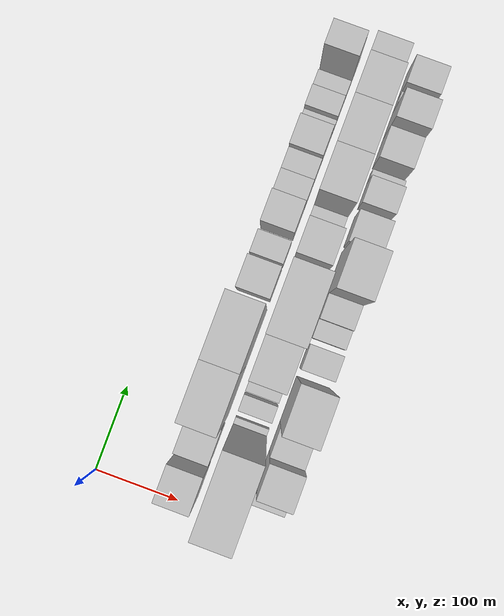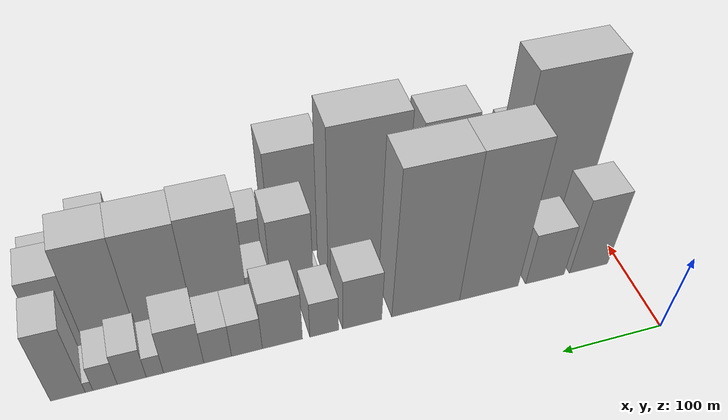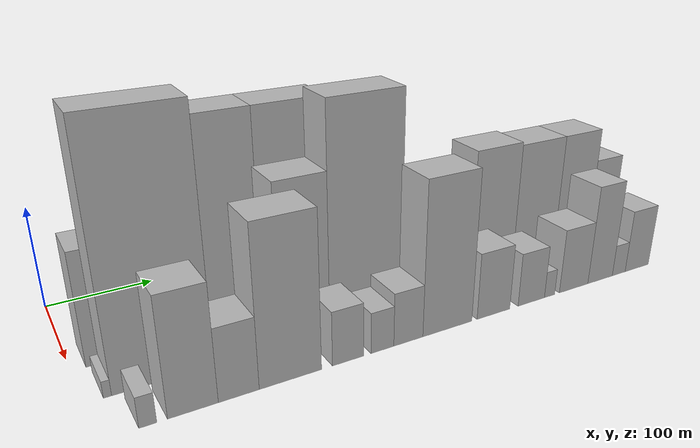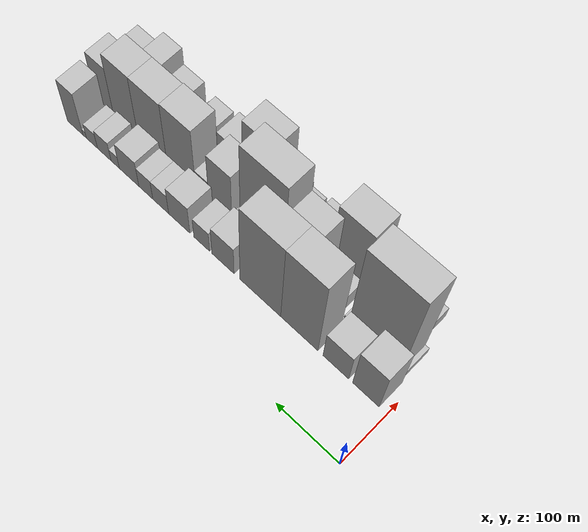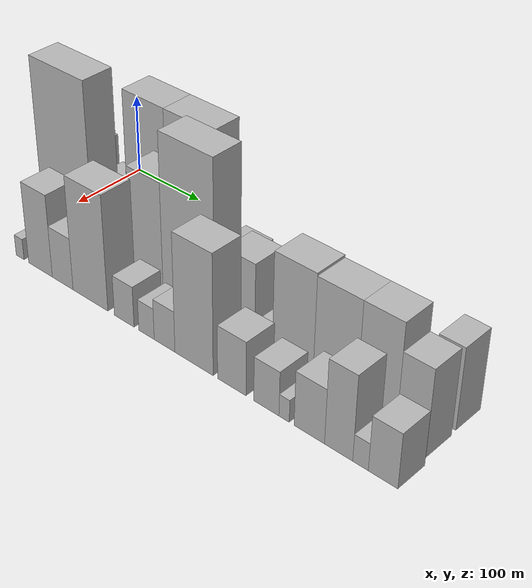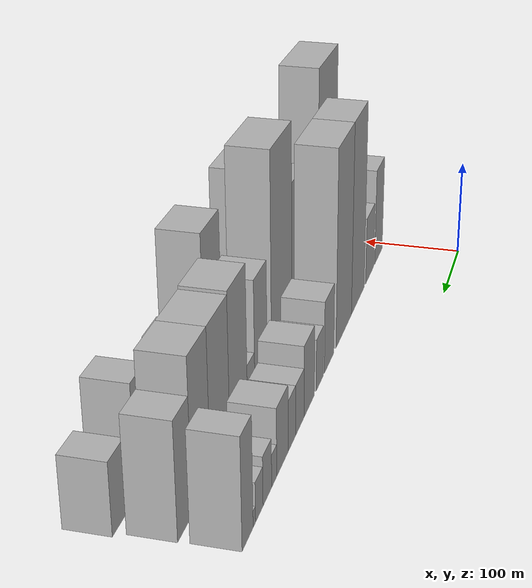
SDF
<sdf version="1.6">
 <world name="default">
  <model name="building_15">
   <static>1</static>
   <pose>100.0000 32.9427 0 0.000000 0.000000 0.000000</pose>
   <link name="link">
    <pose>0 0 52.50 0 0 0</pose>
    <collision name="collision"><geometry><box><size>40.0000 41.3135 105.0000</size></box></geometry></collision>
    <visual name="visual">
     <cast_shadows>0</cast_shadows>
     <geometry><box><size>40.0000 41.3135 105.0000</size></box></geometry>
     <material>
      <script>
       <uri>model://HANNAS_wall/materials/scripts</uri>
       <uri>model://HANNAS_wall/materials/textures</uri>
       <name>vrc/HANNAS_wall</name>
      </script>
     </material>
    </visual>
   </link>
  </model>
  <model name="building_16">
   <static>1</static>
   <pose>100.0000 80.0405 0 0.000000 0.000000 0.000000</pose>
   <link name="link">
    <pose>0 0 36.00 0 0 0</pose>
    <collision name="collision"><geometry><box><size>40.0000 40.8822 72.0000</size></box></geometry></collision>
    <visual name="visual">
     <cast_shadows>0</cast_shadows>
     <geometry><box><size>40.0000 40.8822 72.0000</size></box></geometry>
     <material>
      <script>
       <uri>model://HANNAS_wall/materials/scripts</uri>
       <uri>model://HANNAS_wall/materials/textures</uri>
       <name>vrc/HANNAS_wall</name>
      </script>
     </material>
    </visual>
   </link>
  </model>
  <model name="building_17">
   <static>1</static>
   <pose>100.0000 138.8409 0 0.000000 0.000000 0.000000</pose>
   <link name="link">
    <pose>0 0 99.00 0 0 0</pose>
    <collision name="collision"><geometry><box><size>40.0000 60.7184 198.0000</size></box></geometry></collision>
    <visual name="visual">
     <cast_shadows>0</cast_shadows>
     <geometry><box><size>40.0000 60.7184 198.0000</size></box></geometry>
     <material>
      <script>
       <uri>model://HANNAS_wall/materials/scripts</uri>
       <uri>model://HANNAS_wall/materials/textures</uri>
       <name>vrc/HANNAS_wall</name>
      </script>
     </material>
    </visual>
   </link>
  </model>
  <model name="building_18">
   <static>1</static>
   <pose>100.0000 203.3667 0 0.000000 0.000000 0.000000</pose>
   <link name="link">
    <pose>0 0 99.00 0 0 0</pose>
    <collision name="collision"><geometry><box><size>40.0000 68.3333 198.0000</size></box></geometry></collision>
    <visual name="visual">
     <cast_shadows>0</cast_shadows>
     <geometry><box><size>40.0000 68.3333 198.0000</size></box></geometry>
     <material>
      <script>
       <uri>model://HANNAS_wall/materials/scripts</uri>
       <uri>model://HANNAS_wall/materials/textures</uri>
       <name>vrc/HANNAS_wall</name>
      </script>
     </material>
    </visual>
   </link>
  </model>
  <model name="building_19">
   <static>1</static>
   <pose>100.0000 266.5942 0 0.000000 0.000000 0.000000</pose>
   <link name="link">
    <pose>0 0 36.00 0 0 0</pose>
    <collision name="collision"><geometry><box><size>40.0000 38.1216 72.0000</size></box></geometry></collision>
    <visual name="visual">
     <cast_shadows>0</cast_shadows>
     <geometry><box><size>40.0000 38.1216 72.0000</size></box></geometry>
     <material>
      <script>
       <uri>model://HANNAS_wall/materials/scripts</uri>
       <uri>model://HANNAS_wall/materials/textures</uri>
       <name>vrc/HANNAS_wall</name>
      </script>
     </material>
    </visual>
   </link>
  </model>
  <model name="building_20">
   <static>1</static>
   <pose>100.0000 303.4126 0 0.000000 0.000000 0.000000</pose>
   <link name="link">
    <pose>0 0 25.50 0 0 0</pose>
    <collision name="collision"><geometry><box><size>40.0000 27.5153 51.0000</size></box></geometry></collision>
    <visual name="visual">
     <cast_shadows>0</cast_shadows>
     <geometry><box><size>40.0000 27.5153 51.0000</size></box></geometry>
     <material>
      <script>
       <uri>model://HANNAS_wall/materials/scripts</uri>
       <uri>model://HANNAS_wall/materials/textures</uri>
       <name>vrc/HANNAS_wall</name>
      </script>
     </material>
    </visual>
   </link>
  </model>
  <model name="building_21">
   <static>1</static>
   <pose>100.0000 343.0407 0 0.000000 0.000000 0.000000</pose>
   <link name="link">
    <pose>0 0 34.50 0 0 0</pose>
    <collision name="collision"><geometry><box><size>40.0000 37.7409 69.0000</size></box></geometry></collision>
    <visual name="visual">
     <cast_shadows>0</cast_shadows>
     <geometry><box><size>40.0000 37.7409 69.0000</size></box></geometry>
     <material>
      <script>
       <uri>model://HANNAS_wall/materials/scripts</uri>
       <uri>model://HANNAS_wall/materials/textures</uri>
       <name>vrc/HANNAS_wall</name>
      </script>
     </material>
    </visual>
   </link>
  </model>
  <model name="building_22">
   <static>1</static>
   <pose>100.0000 376.2095 0 0.000000 0.000000 0.000000</pose>
   <link name="link">
    <pose>0 0 24.00 0 0 0</pose>
    <collision name="collision"><geometry><box><size>40.0000 28.5967 48.0000</size></box></geometry></collision>
    <visual name="visual">
     <cast_shadows>0</cast_shadows>
     <geometry><box><size>40.0000 28.5967 48.0000</size></box></geometry>
     <material>
      <script>
       <uri>model://HANNAS_wall/materials/scripts</uri>
       <uri>model://HANNAS_wall/materials/textures</uri>
       <name>vrc/HANNAS_wall</name>
      </script>
     </material>
    </visual>
   </link>
  </model>
  <model name="building_23">
   <static>1</static>
   <pose>100.0000 403.1904 0 0.000000 0.000000 0.000000</pose>
   <link name="link">
    <pose>0 0 24.00 0 0 0</pose>
    <collision name="collision"><geometry><box><size>40.0000 25.3651 48.0000</size></box></geometry></collision>
    <visual name="visual">
     <cast_shadows>0</cast_shadows>
     <geometry><box><size>40.0000 25.3651 48.0000</size></box></geometry>
     <material>
      <script>
       <uri>model://HANNAS_wall/materials/scripts</uri>
       <uri>model://HANNAS_wall/materials/textures</uri>
       <name>vrc/HANNAS_wall</name>
      </script>
     </material>
    </visual>
   </link>
  </model>
  <model name="building_24">
   <static>1</static>
   <pose>100.0000 433.9990 0 0.000000 0.000000 0.000000</pose>
   <link name="link">
    <pose>0 0 31.50 0 0 0</pose>
    <collision name="collision"><geometry><box><size>40.0000 36.2522 63.0000</size></box></geometry></collision>
    <visual name="visual">
     <cast_shadows>0</cast_shadows>
     <geometry><box><size>40.0000 36.2522 63.0000</size></box></geometry>
     <material>
      <script>
       <uri>model://HANNAS_wall/materials/scripts</uri>
       <uri>model://HANNAS_wall/materials/textures</uri>
       <name>vrc/HANNAS_wall</name>
      </script>
     </material>
    </visual>
   </link>
  </model>
  <model name="building_25">
   <static>1</static>
   <pose>100.0000 459.8254 0 0.000000 0.000000 0.000000</pose>
   <link name="link">
    <pose>0 0 15.00 0 0 0</pose>
    <collision name="collision"><geometry><box><size>40.0000 15.4006 30.0000</size></box></geometry></collision>
    <visual name="visual">
     <cast_shadows>0</cast_shadows>
     <geometry><box><size>40.0000 15.4006 30.0000</size></box></geometry>
     <material>
      <script>
       <uri>model://HANNAS_wall/materials/scripts</uri>
       <uri>model://HANNAS_wall/materials/textures</uri>
       <name>vrc/HANNAS_wall</name>
      </script>
     </material>
    </visual>
   </link>
  </model>
  <model name="building_26">
   <static>1</static>
   <pose>100.0000 480.3086 0 0.000000 0.000000 0.000000</pose>
   <link name="link">
    <pose>0 0 22.50 0 0 0</pose>
    <collision name="collision"><geometry><box><size>40.0000 25.5657 45.0000</size></box></geometry></collision>
    <visual name="visual">
     <cast_shadows>0</cast_shadows>
     <geometry><box><size>40.0000 25.5657 45.0000</size></box></geometry>
     <material>
      <script>
       <uri>model://HANNAS_wall/materials/scripts</uri>
       <uri>model://HANNAS_wall/materials/textures</uri>
       <name>vrc/HANNAS_wall</name>
      </script>
     </material>
    </visual>
   </link>
  </model>
  <model name="building_27">
   <static>1</static>
   <pose>100.0000 503.7070 0 0.000000 0.000000 0.000000</pose>
   <link name="link">
    <pose>0 0 18.00 0 0 0</pose>
    <collision name="collision"><geometry><box><size>40.0000 21.2311 36.0000</size></box></geometry></collision>
    <visual name="visual">
     <cast_shadows>0</cast_shadows>
     <geometry><box><size>40.0000 21.2311 36.0000</size></box></geometry>
     <material>
      <script>
       <uri>model://HANNAS_wall/materials/scripts</uri>
       <uri>model://HANNAS_wall/materials/textures</uri>
       <name>vrc/HANNAS_wall</name>
      </script>
     </material>
    </visual>
   </link>
  </model>
  <model name="building_28">
   <static>1</static>
   <pose>100.0000 517.6253 0 0.000000 0.000000 0.000000</pose>
   <link name="link">
    <pose>0 0 7.50 0 0 0</pose>
    <collision name="collision"><geometry><box><size>40.0000 6.6057 15.0000</size></box></geometry></collision>
    <visual name="visual">
     <cast_shadows>0</cast_shadows>
     <geometry><box><size>40.0000 6.6057 15.0000</size></box></geometry>
     <material>
      <script>
       <uri>model://HANNAS_wall/materials/scripts</uri>
       <uri>model://HANNAS_wall/materials/textures</uri>
       <name>vrc/HANNAS_wall</name>
      </script>
     </material>
    </visual>
   </link>
  </model>
  <model name="building_29">
   <static>1</static>
   <pose>100.0000 535.8227 0 0.000000 0.000000 0.000000</pose>
   <link name="link">
    <pose>0 0 49.50 0 0 0</pose>
    <collision name="collision"><geometry><box><size>40.0000 29.7891 99.0000</size></box></geometry></collision>
    <visual name="visual">
     <cast_shadows>0</cast_shadows>
     <geometry><box><size>40.0000 29.7891 99.0000</size></box></geometry>
     <material>
      <script>
       <uri>model://HANNAS_wall/materials/scripts</uri>
       <uri>model://HANNAS_wall/materials/textures</uri>
       <name>vrc/HANNAS_wall</name>
      </script>
     </material>
    </visual>
   </link>
  </model>
  <model name="building_47">
   <static>1</static>
   <pose>149.0000 18.4719 0 0.000000 0.000000 0.000000</pose>
   <link name="link">
    <pose>0 0 7.50 0 0 0</pose>
    <collision name="collision"><geometry><box><size>40.0000 6.2835 15.0000</size></box></geometry></collision>
    <visual name="visual">
     <cast_shadows>0</cast_shadows>
     <geometry><box><size>40.0000 6.2835 15.0000</size></box></geometry>
     <material>
      <script>
       <uri>model://HANNAS_wall/materials/scripts</uri>
       <uri>model://HANNAS_wall/materials/textures</uri>
       <name>vrc/HANNAS_wall</name>
      </script>
     </material>
    </visual>
   </link>
  </model>
  <model name="building_48">
   <static>1</static>
   <pose>149.0000 63.1978 0 0.000000 0.000000 0.000000</pose>
   <link name="link">
    <pose>0 0 112.50 0 0 0</pose>
    <collision name="collision"><geometry><box><size>40.0000 83.1682 225.0000</size></box></geometry></collision>
    <visual name="visual">
     <cast_shadows>0</cast_shadows>
     <geometry><box><size>40.0000 83.1682 225.0000</size></box></geometry>
     <material>
      <script>
       <uri>model://HANNAS_wall/materials/scripts</uri>
       <uri>model://HANNAS_wall/materials/textures</uri>
       <name>vrc/HANNAS_wall</name>
      </script>
     </material>
    </visual>
   </link>
  </model>
  <model name="building_49">
   <static>1</static>
   <pose>149.0000 108.7151 0 0.000000 0.000000 0.000000</pose>
   <link name="link">
    <pose>0 0 9.00 0 0 0</pose>
    <collision name="collision"><geometry><box><size>40.0000 7.8665 18.0000</size></box></geometry></collision>
    <visual name="visual">
     <cast_shadows>0</cast_shadows>
     <geometry><box><size>40.0000 7.8665 18.0000</size></box></geometry>
     <material>
      <script>
       <uri>model://HANNAS_wall/materials/scripts</uri>
       <uri>model://HANNAS_wall/materials/textures</uri>
       <name>vrc/HANNAS_wall</name>
      </script>
     </material>
    </visual>
   </link>
  </model>
  <model name="building_50">
   <static>1</static>
   <pose>149.0000 131.3563 0 0.000000 0.000000 0.000000</pose>
   <link name="link">
    <pose>0 0 18.00 0 0 0</pose>
    <collision name="collision"><geometry><box><size>40.0000 19.4159 36.0000</size></box></geometry></collision>
    <visual name="visual">
     <cast_shadows>0</cast_shadows>
     <geometry><box><size>40.0000 19.4159 36.0000</size></box></geometry>
     <material>
      <script>
       <uri>model://HANNAS_wall/materials/scripts</uri>
       <uri>model://HANNAS_wall/materials/textures</uri>
       <name>vrc/HANNAS_wall</name>
      </script>
     </material>
    </visual>
   </link>
  </model>
  <model name="building_51">
   <static>1</static>
   <pose>149.0000 150.3839 0 0.000000 0.000000 0.000000</pose>
   <link name="link">
    <pose>0 0 13.50 0 0 0</pose>
    <collision name="collision"><geometry><box><size>40.0000 12.6393 27.0000</size></box></geometry></collision>
    <visual name="visual">
     <cast_shadows>0</cast_shadows>
     <geometry><box><size>40.0000 12.6393 27.0000</size></box></geometry>
     <material>
      <script>
       <uri>model://HANNAS_wall/materials/scripts</uri>
       <uri>model://HANNAS_wall/materials/textures</uri>
       <name>vrc/HANNAS_wall</name>
      </script>
     </material>
    </visual>
   </link>
  </model>
  <model name="building_52">
   <static>1</static>
   <pose>149.0000 160.0758 0 0.000000 0.000000 0.000000</pose>
   <link name="link">
    <pose>0 0 7.50 0 0 0</pose>
    <collision name="collision"><geometry><box><size>40.0000 6.7444 15.0000</size></box></geometry></collision>
    <visual name="visual">
     <cast_shadows>0</cast_shadows>
     <geometry><box><size>40.0000 6.7444 15.0000</size></box></geometry>
     <material>
      <script>
       <uri>model://HANNAS_wall/materials/scripts</uri>
       <uri>model://HANNAS_wall/materials/textures</uri>
       <name>vrc/HANNAS_wall</name>
      </script>
     </material>
    </visual>
   </link>
  </model>
  <model name="building_53">
   <static>1</static>
   <pose>149.0000 187.6283 0 0.000000 0.000000 0.000000</pose>
   <link name="link">
    <pose>0 0 75.00 0 0 0</pose>
    <collision name="collision"><geometry><box><size>40.0000 48.3606 150.0000</size></box></geometry></collision>
    <visual name="visual">
     <cast_shadows>0</cast_shadows>
     <geometry><box><size>40.0000 48.3606 150.0000</size></box></geometry>
     <material>
      <script>
       <uri>model://HANNAS_wall/materials/scripts</uri>
       <uri>model://HANNAS_wall/materials/textures</uri>
       <name>vrc/HANNAS_wall</name>
      </script>
     </material>
    </visual>
   </link>
  </model>
  <model name="building_54">
   <static>1</static>
   <pose>149.0000 248.7288 0 0.000000 0.000000 0.000000</pose>
   <link name="link">
    <pose>0 0 105.00 0 0 0</pose>
    <collision name="collision"><geometry><box><size>40.0000 73.8404 210.0000</size></box></geometry></collision>
    <visual name="visual">
     <cast_shadows>0</cast_shadows>
     <geometry><box><size>40.0000 73.8404 210.0000</size></box></geometry>
     <material>
      <script>
       <uri>model://HANNAS_wall/materials/scripts</uri>
       <uri>model://HANNAS_wall/materials/textures</uri>
       <name>vrc/HANNAS_wall</name>
      </script>
     </material>
    </visual>
   </link>
  </model>
  <model name="building_55">
   <static>1</static>
   <pose>149.0000 295.9951 0 0.000000 0.000000 0.000000</pose>
   <link name="link">
    <pose>0 0 9.00 0 0 0</pose>
    <collision name="collision"><geometry><box><size>40.0000 8.6923 18.0000</size></box></geometry></collision>
    <visual name="visual">
     <cast_shadows>0</cast_shadows>
     <geometry><box><size>40.0000 8.6923 18.0000</size></box></geometry>
     <material>
      <script>
       <uri>model://HANNAS_wall/materials/scripts</uri>
       <uri>model://HANNAS_wall/materials/textures</uri>
       <name>vrc/HANNAS_wall</name>
      </script>
     </material>
    </visual>
   </link>
  </model>
  <model name="building_56">
   <static>1</static>
   <pose>149.0000 320.6971 0 0.000000 0.000000 0.000000</pose>
   <link name="link">
    <pose>0 0 57.00 0 0 0</pose>
    <collision name="collision"><geometry><box><size>40.0000 40.7116 114.0000</size></box></geometry></collision>
    <visual name="visual">
     <cast_shadows>0</cast_shadows>
     <geometry><box><size>40.0000 40.7116 114.0000</size></box></geometry>
     <material>
      <script>
       <uri>model://HANNAS_wall/materials/scripts</uri>
       <uri>model://HANNAS_wall/materials/textures</uri>
       <name>vrc/HANNAS_wall</name>
      </script>
     </material>
    </visual>
   </link>
  </model>
  <model name="building_57">
   <static>1</static>
   <pose>149.0000 352.7675 0 0.000000 0.000000 0.000000</pose>
   <link name="link">
    <pose>0 0 22.50 0 0 0</pose>
    <collision name="collision"><geometry><box><size>40.0000 23.4290 45.0000</size></box></geometry></collision>
    <visual name="visual">
     <cast_shadows>0</cast_shadows>
     <geometry><box><size>40.0000 23.4290 45.0000</size></box></geometry>
     <material>
      <script>
       <uri>model://HANNAS_wall/materials/scripts</uri>
       <uri>model://HANNAS_wall/materials/textures</uri>
       <name>vrc/HANNAS_wall</name>
      </script>
     </material>
    </visual>
   </link>
  </model>
  <model name="building_58">
   <static>1</static>
   <pose>149.0000 390.6011 0 0.000000 0.000000 0.000000</pose>
   <link name="link">
    <pose>0 0 70.50 0 0 0</pose>
    <collision name="collision"><geometry><box><size>40.0000 52.2381 141.0000</size></box></geometry></collision>
    <visual name="visual">
     <cast_shadows>0</cast_shadows>
     <geometry><box><size>40.0000 52.2381 141.0000</size></box></geometry>
     <material>
      <script>
       <uri>model://HANNAS_wall/materials/scripts</uri>
       <uri>model://HANNAS_wall/materials/textures</uri>
       <name>vrc/HANNAS_wall</name>
      </script>
     </material>
    </visual>
   </link>
  </model>
  <model name="building_59">
   <static>1</static>
   <pose>149.0000 443.5826 0 0.000000 0.000000 0.000000</pose>
   <link name="link">
    <pose>0 0 69.00 0 0 0</pose>
    <collision name="collision"><geometry><box><size>40.0000 53.7249 138.0000</size></box></geometry></collision>
    <visual name="visual">
     <cast_shadows>0</cast_shadows>
     <geometry><box><size>40.0000 53.7249 138.0000</size></box></geometry>
     <material>
      <script>
       <uri>model://HANNAS_wall/materials/scripts</uri>
       <uri>model://HANNAS_wall/materials/textures</uri>
       <name>vrc/HANNAS_wall</name>
      </script>
     </material>
    </visual>
   </link>
  </model>
  <model name="building_60">
   <static>1</static>
   <pose>149.0000 493.7736 0 0.000000 0.000000 0.000000</pose>
   <link name="link">
    <pose>0 0 69.00 0 0 0</pose>
    <collision name="collision"><geometry><box><size>40.0000 46.6572 138.0000</size></box></geometry></collision>
    <visual name="visual">
     <cast_shadows>0</cast_shadows>
     <geometry><box><size>40.0000 46.6572 138.0000</size></box></geometry>
     <material>
      <script>
       <uri>model://HANNAS_wall/materials/scripts</uri>
       <uri>model://HANNAS_wall/materials/textures</uri>
       <name>vrc/HANNAS_wall</name>
      </script>
     </material>
    </visual>
   </link>
  </model>
  <model name="building_61">
   <static>1</static>
   <pose>149.0000 534.5299 0 0.000000 0.000000 0.000000</pose>
   <link name="link">
    <pose>0 0 52.50 0 0 0</pose>
    <collision name="collision"><geometry><box><size>40.0000 34.8553 105.0000</size></box></geometry></collision>
    <visual name="visual">
     <cast_shadows>0</cast_shadows>
     <geometry><box><size>40.0000 34.8553 105.0000</size></box></geometry>
     <material>
      <script>
       <uri>model://HANNAS_wall/materials/scripts</uri>
       <uri>model://HANNAS_wall/materials/textures</uri>
       <name>vrc/HANNAS_wall</name>
      </script>
     </material>
    </visual>
   </link>
  </model>
  <model name="building_76">
   <static>1</static>
   <pose>198.0000 36.2858 0 0.000000 0.000000 0.000000</pose>
   <link name="link">
    <pose>0 0 13.50 0 0 0</pose>
    <collision name="collision"><geometry><box><size>40.0000 13.3207 27.0000</size></box></geometry></collision>
    <visual name="visual">
     <cast_shadows>0</cast_shadows>
     <geometry><box><size>40.0000 13.3207 27.0000</size></box></geometry>
     <material>
      <script>
       <uri>model://HANNAS_wall/materials/scripts</uri>
       <uri>model://HANNAS_wall/materials/textures</uri>
       <name>vrc/HANNAS_wall</name>
      </script>
     </material>
    </visual>
   </link>
  </model>
  <model name="building_77">
   <static>1</static>
   <pose>198.0000 70.7077 0 0.000000 0.000000 0.000000</pose>
   <link name="link">
    <pose>0 0 52.50 0 0 0</pose>
    <collision name="collision"><geometry><box><size>40.0000 39.5230 105.0000</size></box></geometry></collision>
    <visual name="visual">
     <cast_shadows>0</cast_shadows>
     <geometry><box><size>40.0000 39.5230 105.0000</size></box></geometry>
     <material>
      <script>
       <uri>model://HANNAS_wall/materials/scripts</uri>
       <uri>model://HANNAS_wall/materials/textures</uri>
       <name>vrc/HANNAS_wall</name>
      </script>
     </material>
    </visual>
   </link>
  </model>
  <model name="building_78">
   <static>1</static>
   <pose>198.0000 107.2797 0 0.000000 0.000000 0.000000</pose>
   <link name="link">
    <pose>0 0 33.00 0 0 0</pose>
    <collision name="collision"><geometry><box><size>40.0000 33.6210 66.0000</size></box></geometry></collision>
    <visual name="visual">
     <cast_shadows>0</cast_shadows>
     <geometry><box><size>40.0000 33.6210 66.0000</size></box></geometry>
     <material>
      <script>
       <uri>model://HANNAS_wall/materials/scripts</uri>
       <uri>model://HANNAS_wall/materials/textures</uri>
       <name>vrc/HANNAS_wall</name>
      </script>
     </material>
    </visual>
   </link>
  </model>
  <model name="building_79">
   <static>1</static>
   <pose>198.0000 151.4117 0 0.000000 0.000000 0.000000</pose>
   <link name="link">
    <pose>0 0 72.00 0 0 0</pose>
    <collision name="collision"><geometry><box><size>40.0000 54.6430 144.0000</size></box></geometry></collision>
    <visual name="visual">
     <cast_shadows>0</cast_shadows>
     <geometry><box><size>40.0000 54.6430 144.0000</size></box></geometry>
     <material>
      <script>
       <uri>model://HANNAS_wall/materials/scripts</uri>
       <uri>model://HANNAS_wall/materials/textures</uri>
       <name>vrc/HANNAS_wall</name>
      </script>
     </material>
    </visual>
   </link>
  </model>
  <model name="building_80">
   <static>1</static>
   <pose>198.0000 203.5359 0 0.000000 0.000000 0.000000</pose>
   <link name="link">
    <pose>0 0 25.50 0 0 0</pose>
    <collision name="collision"><geometry><box><size>40.0000 29.6054 51.0000</size></box></geometry></collision>
    <visual name="visual">
     <cast_shadows>0</cast_shadows>
     <geometry><box><size>40.0000 29.6054 51.0000</size></box></geometry>
     <material>
      <script>
       <uri>model://HANNAS_wall/materials/scripts</uri>
       <uri>model://HANNAS_wall/materials/textures</uri>
       <name>vrc/HANNAS_wall</name>
      </script>
     </material>
    </visual>
   </link>
  </model>
  <model name="building_81">
   <static>1</static>
   <pose>198.0000 236.6307 0 0.000000 0.000000 0.000000</pose>
   <link name="link">
    <pose>0 0 19.50 0 0 0</pose>
    <collision name="collision"><geometry><box><size>40.0000 22.5841 39.0000</size></box></geometry></collision>
    <visual name="visual">
     <cast_shadows>0</cast_shadows>
     <geometry><box><size>40.0000 22.5841 39.0000</size></box></geometry>
     <material>
      <script>
       <uri>model://HANNAS_wall/materials/scripts</uri>
       <uri>model://HANNAS_wall/materials/textures</uri>
       <name>vrc/HANNAS_wall</name>
      </script>
     </material>
    </visual>
   </link>
  </model>
  <model name="building_82">
   <static>1</static>
   <pose>198.0000 262.8094 0 0.000000 0.000000 0.000000</pose>
   <link name="link">
    <pose>0 0 25.50 0 0 0</pose>
    <collision name="collision"><geometry><box><size>40.0000 29.7733 51.0000</size></box></geometry></collision>
    <visual name="visual">
     <cast_shadows>0</cast_shadows>
     <geometry><box><size>40.0000 29.7733 51.0000</size></box></geometry>
     <material>
      <script>
       <uri>model://HANNAS_wall/materials/scripts</uri>
       <uri>model://HANNAS_wall/materials/textures</uri>
       <name>vrc/HANNAS_wall</name>
      </script>
     </material>
    </visual>
   </link>
  </model>
  <model name="building_83">
   <static>1</static>
   <pose>198.0000 304.1840 0 0.000000 0.000000 0.000000</pose>
   <link name="link">
    <pose>0 0 73.50 0 0 0</pose>
    <collision name="collision"><geometry><box><size>40.0000 52.9758 147.0000</size></box></geometry></collision>
    <visual name="visual">
     <cast_shadows>0</cast_shadows>
     <geometry><box><size>40.0000 52.9758 147.0000</size></box></geometry>
     <material>
      <script>
       <uri>model://HANNAS_wall/materials/scripts</uri>
       <uri>model://HANNAS_wall/materials/textures</uri>
       <name>vrc/HANNAS_wall</name>
      </script>
     </material>
    </visual>
   </link>
  </model>
  <model name="building_84">
   <static>1</static>
   <pose>198.0000 355.5446 0 0.000000 0.000000 0.000000</pose>
   <link name="link">
    <pose>0 0 33.00 0 0 0</pose>
    <collision name="collision"><geometry><box><size>40.0000 37.7453 66.0000</size></box></geometry></collision>
    <visual name="visual">
     <cast_shadows>0</cast_shadows>
     <geometry><box><size>40.0000 37.7453 66.0000</size></box></geometry>
     <material>
      <script>
       <uri>model://HANNAS_wall/materials/scripts</uri>
       <uri>model://HANNAS_wall/materials/textures</uri>
       <name>vrc/HANNAS_wall</name>
      </script>
     </material>
    </visual>
   </link>
  </model>
  <model name="building_85">
   <static>1</static>
   <pose>198.0000 400.5529 0 0.000000 0.000000 0.000000</pose>
   <link name="link">
    <pose>0 0 27.00 0 0 0</pose>
    <collision name="collision"><geometry><box><size>40.0000 32.2712 54.0000</size></box></geometry></collision>
    <visual name="visual">
     <cast_shadows>0</cast_shadows>
     <geometry><box><size>40.0000 32.2712 54.0000</size></box></geometry>
     <material>
      <script>
       <uri>model://HANNAS_wall/materials/scripts</uri>
       <uri>model://HANNAS_wall/materials/textures</uri>
       <name>vrc/HANNAS_wall</name>
      </script>
     </material>
    </visual>
   </link>
  </model>
  <model name="building_86">
   <static>1</static>
   <pose>198.0000 423.1226 0 0.000000 0.000000 0.000000</pose>
   <link name="link">
    <pose>0 0 13.50 0 0 0</pose>
    <collision name="collision"><geometry><box><size>40.0000 12.8683 27.0000</size></box></geometry></collision>
    <visual name="visual">
     <cast_shadows>0</cast_shadows>
     <geometry><box><size>40.0000 12.8683 27.0000</size></box></geometry>
     <material>
      <script>
       <uri>model://HANNAS_wall/materials/scripts</uri>
       <uri>model://HANNAS_wall/materials/textures</uri>
       <name>vrc/HANNAS_wall</name>
      </script>
     </material>
    </visual>
   </link>
  </model>
  <model name="building_87">
   <static>1</static>
   <pose>198.0000 454.1565 0 0.000000 0.000000 0.000000</pose>
   <link name="link">
    <pose>0 0 33.00 0 0 0</pose>
    <collision name="collision"><geometry><box><size>40.0000 37.1994 66.0000</size></box></geometry></collision>
    <visual name="visual">
     <cast_shadows>0</cast_shadows>
     <geometry><box><size>40.0000 37.1994 66.0000</size></box></geometry>
     <material>
      <script>
       <uri>model://HANNAS_wall/materials/scripts</uri>
       <uri>model://HANNAS_wall/materials/textures</uri>
       <name>vrc/HANNAS_wall</name>
      </script>
     </material>
    </visual>
   </link>
  </model>
  <model name="building_88">
   <static>1</static>
   <pose>198.0000 489.4118 0 0.000000 0.000000 0.000000</pose>
   <link name="link">
    <pose>0 0 51.00 0 0 0</pose>
    <collision name="collision"><geometry><box><size>40.0000 33.3111 102.0000</size></box></geometry></collision>
    <visual name="visual">
     <cast_shadows>0</cast_shadows>
     <geometry><box><size>40.0000 33.3111 102.0000</size></box></geometry>
     <material>
      <script>
       <uri>model://HANNAS_wall/materials/scripts</uri>
       <uri>model://HANNAS_wall/materials/textures</uri>
       <name>vrc/HANNAS_wall</name>
      </script>
     </material>
    </visual>
   </link>
  </model>
  <model name="building_89">
   <static>1</static>
   <pose>198.0000 515.0490 0 0.000000 0.000000 0.000000</pose>
   <link name="link">
    <pose>0 0 16.50 0 0 0</pose>
    <collision name="collision"><geometry><box><size>40.0000 17.9633 33.0000</size></box></geometry></collision>
    <visual name="visual">
     <cast_shadows>0</cast_shadows>
     <geometry><box><size>40.0000 17.9633 33.0000</size></box></geometry>
     <material>
      <script>
       <uri>model://HANNAS_wall/materials/scripts</uri>
       <uri>model://HANNAS_wall/materials/textures</uri>
       <name>vrc/HANNAS_wall</name>
      </script>
     </material>
    </visual>
   </link>
  </model>
  <model name="building_90">
   <static>1</static>
   <pose>198.0000 540.7167 0 0.000000 0.000000 0.000000</pose>
   <link name="link">
    <pose>0 0 33.00 0 0 0</pose>
    <collision name="collision"><geometry><box><size>40.0000 33.3720 66.0000</size></box></geometry></collision>
    <visual name="visual">
     <cast_shadows>0</cast_shadows>
     <geometry><box><size>40.0000 33.3720 66.0000</size></box></geometry>
     <material>
      <script>
       <uri>model://HANNAS_wall/materials/scripts</uri>
       <uri>model://HANNAS_wall/materials/textures</uri>
       <name>vrc/HANNAS_wall</name>
      </script>
     </material>
    </visual>
   </link>
  </model>
 </world>
</sdf>
